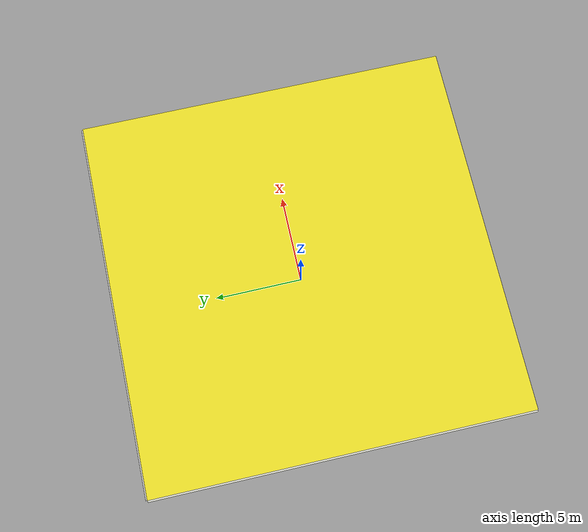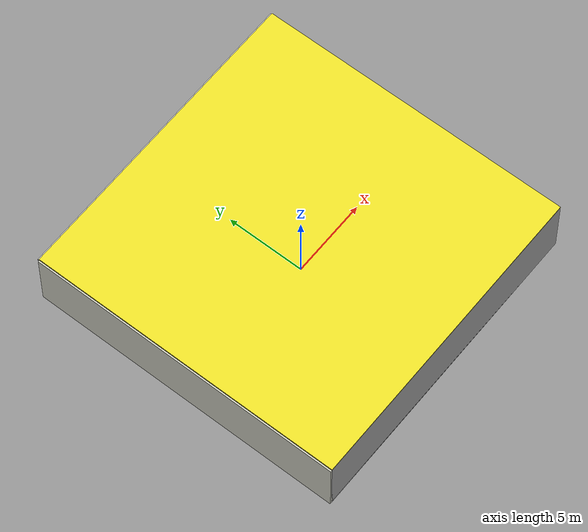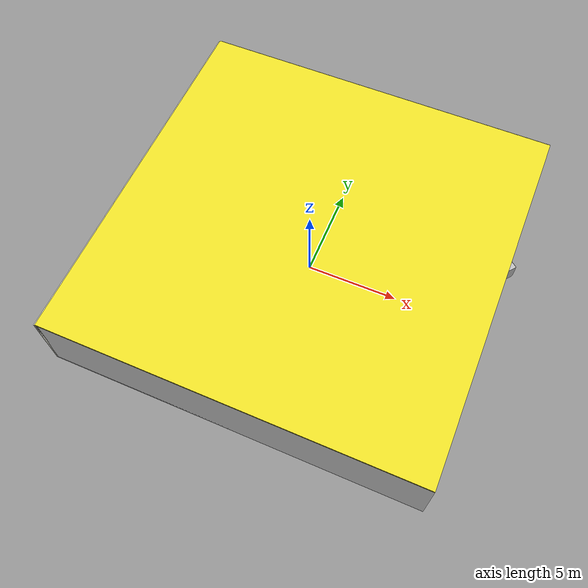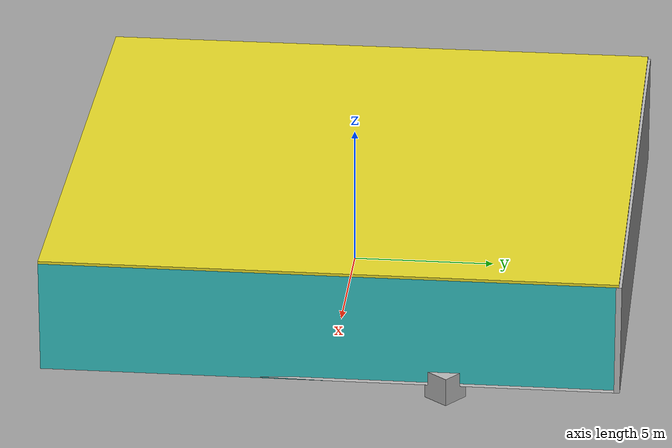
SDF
<sdf version="1.4">
 <world name="default">
  <physics type="ode">
   <max_step_size>0.001</max_step_size>
   <real_time_factor>1</real_time_factor>
   <real_time_update_rate>1000</real_time_update_rate>
   <gravity>0 0 -9.8</gravity>
  </physics>
  <scene><ambient>0.4 0.4 0.4 1</ambient><background>0.7 0.7 0.7 1</background><shadows>1</shadows></scene>
  <model name="Surrounding">
   <static>1</static>
   <link name="Ceiling">
    <collision name="Ceiling_Collision"><geometry><box><size>20 20 0.1</size></box></geometry></collision>
    <visual name="Ceiling_Visual">
     <geometry><box><size>20 20 0.1</size></box></geometry>
     <material>
      <script><uri>file://media/materials/scripts/gazebo.material</uri><name>Gazebo/YellowGlow</name></script>
     </material>
    </visual>
    <pose>0 0 4.05 0 0 0</pose>
   </link>
   <link name="Wall_South">
    <collision name="Wall_South_Collision">
     <geometry><box><size>20 0 4</size></box></geometry>
     <pose>0 0 2 0 -0 0</pose>
    </collision>
    <visual name="Wall_South_Visual">
     <pose>0 0 2 0 -0 0</pose>
     <geometry><box><size>20 0 4</size></box></geometry>
     <material>
      <script><uri>file://media/materials/scripts/gazebo.material</uri><name>Gazebo/LightOn</name></script>
     </material>
    </visual>
    <velocity_decay><linear>0</linear><angular>0</angular></velocity_decay>
    <pose>0 -10 0 0 -0 0</pose>
   </link>
   <link name="Wall_East">
    <collision name="Wall_21_Collision">
     <geometry><box><size>20 0 4</size></box></geometry>
     <pose>0 0 2 0 -0 0</pose>
    </collision>
    <visual name="Wall_21_Visual">
     <pose>0 0 2 0 -0 0</pose>
     <geometry><box><size>20 0 4</size></box></geometry>
     <material>
      <script><uri>file://media/materials/scripts/gazebo.material</uri><name>Gazebo/Turquoise</name></script>
     </material>
    </visual>
    <velocity_decay><linear>0</linear><angular>0</angular></velocity_decay>
    <pose>10 0 0 0 -0 1.5708</pose>
   </link>
   <link name="Wall_North">
    <collision name="Wall_22_Collision">
     <geometry><box><size>20 0.2 4</size></box></geometry>
     <pose>0 0 2 0 -0 0</pose>
    </collision>
    <visual name="Wall_22_Visual">
     <pose>0 0 2 0 -0 0</pose>
     <geometry><box><size>20 0.2 4</size></box></geometry>
     <material>
      <script><uri>file://media/materials/scripts/gazebo.material</uri><name>Gazebo/PioneerBody</name></script>
     </material>
    </visual>
    <velocity_decay><linear>0</linear><angular>0</angular></velocity_decay>
    <pose>0 10 0 0 -0 0</pose>
   </link>
   <link name="Wall_West">
    <collision name="Wall_23_Collision">
     <geometry><box><size>20 0.2 4</size></box></geometry>
     <pose>0 0 2 0 -0 0</pose>
    </collision>
    <visual name="Wall_23_Visual">
     <pose>0 0 2 0 -0 0</pose>
     <geometry><box><size>20 0.2 4</size></box></geometry>
     <material>
      <script><uri>file://media/materials/scripts/gazebo.material</uri><name>Gazebo/PaintedWall</name></script>
     </material>
    </visual>
    <velocity_decay><linear>0</linear><angular>0</angular></velocity_decay>
    <pose>-10 0 0 0 0 -1.5708</pose>
   </link>
   <link name="Ground_link">
    <collision name="collision">
     <pose>0 0 .05 0 -0 0</pose>
     <geometry><box><size>20 20 0.1</size></box></geometry>
    </collision>
    <visual name="visual">
     <pose>0 0 .05 0 -0 0</pose>
     <geometry><box><size>20 20 0.1</size></box></geometry>
     <material>
      <script><uri>file://media/materials/scripts/gazebo.material</uri><name>Gazebo/White</name></script>
     </material>
    </visual>
   </link>
   <static>1</static>
  </model>
  <spherical_coordinates>
   <surface_model>EARTH_WGS84</surface_model>
   <latitude_deg>0</latitude_deg>
   <longitude_deg>0</longitude_deg>
   <elevation>0</elevation>
   <heading_deg>0</heading_deg>
  </spherical_coordinates>
  <light name="lightball_0" type="diffuse">
   <diffuse>0.8 0.8 0.8 1</diffuse>
   <specular>0.2 0.2 0.2 1</specular>
   <attenuation>
    <range>100</range>
    <constant>0.7</constant>
    <linear>0.01</linear>
    <quadratic>0.001</quadratic>
   </attenuation>
   <direction>-0.5 0.1 -0.9</direction>
   <pose>9.94693011742 9.06367101576 2.53481296733 0 0 0</pose>
  </light>
  <light name="lightball_1" type="diffuse">
   <diffuse>0.8 0.8 0.8 1</diffuse>
   <specular>0.2 0.2 0.2 1</specular>
   <attenuation>
    <range>100</range>
    <constant>0.7</constant>
    <linear>0.01</linear>
    <quadratic>0.001</quadratic>
   </attenuation>
   <direction>-0.5 0.1 -0.9</direction>
   <pose>0.440759789783 -6.66210085407 2.10096971784 0 0 0</pose>
  </light>
  <light name="lightball_2" type="diffuse">
   <diffuse>0.8 0.8 0.8 1</diffuse>
   <specular>0.2 0.2 0.2 1</specular>
   <attenuation>
    <range>100</range>
    <constant>0.7</constant>
    <linear>0.01</linear>
    <quadratic>0.001</quadratic>
   </attenuation>
   <direction>-0.5 0.1 -0.9</direction>
   <pose>7.44697553442 9.71167037615 2.03562250449 0 0 0</pose>
  </light>
  <light name="lightball_3" type="diffuse">
   <diffuse>0.8 0.8 0.8 1</diffuse>
   <specular>0.2 0.2 0.2 1</specular>
   <attenuation>
    <range>100</range>
    <constant>0.7</constant>
    <linear>0.01</linear>
    <quadratic>0.001</quadratic>
   </attenuation>
   <direction>-0.5 0.1 -0.9</direction>
   <pose>-2.71736651397 5.96436294591 1.08506101946 0 0 0</pose>
  </light>
  <light name="lightball_4" type="diffuse">
   <diffuse>0.8 0.8 0.8 1</diffuse>
   <specular>0.2 0.2 0.2 1</specular>
   <attenuation>
    <range>100</range>
    <constant>0.7</constant>
    <linear>0.01</linear>
    <quadratic>0.001</quadratic>
   </attenuation>
   <direction>-0.5 0.1 -0.9</direction>
   <pose>-0.451411191481 2.38371781496 1.03215299898 0 0 0</pose>
  </light>
  <light name="lightball_5" type="diffuse">
   <diffuse>0.8 0.8 0.8 1</diffuse>
   <specular>0.2 0.2 0.2 1</specular>
   <attenuation>
    <range>100</range>
    <constant>0.7</constant>
    <linear>0.01</linear>
    <quadratic>0.001</quadratic>
   </attenuation>
   <direction>-0.5 0.1 -0.9</direction>
   <pose>-8.81341561565 -3.12265406584 2.54918823382 0 0 0</pose>
  </light>
  <light name="lightball_6" type="diffuse">
   <diffuse>0.8 0.8 0.8 1</diffuse>
   <specular>0.2 0.2 0.2 1</specular>
   <attenuation>
    <range>100</range>
    <constant>0.7</constant>
    <linear>0.01</linear>
    <quadratic>0.001</quadratic>
   </attenuation>
   <direction>-0.5 0.1 -0.9</direction>
   <pose>-7.86330670389 -4.91139773698 1.94146610804 0 0 0</pose>
  </light>
  <light name="lightball_7" type="diffuse">
   <diffuse>0.8 0.8 0.8 1</diffuse>
   <specular>0.2 0.2 0.2 1</specular>
   <attenuation>
    <range>100</range>
    <constant>0.7</constant>
    <linear>0.01</linear>
    <quadratic>0.001</quadratic>
   </attenuation>
   <direction>-0.5 0.1 -0.9</direction>
   <pose>-2.20673944587 4.99305914102 1.52327779514 0 0 0</pose>
  </light>
  <light name="lightball_8" type="diffuse">
   <diffuse>0.8 0.8 0.8 1</diffuse>
   <specular>0.2 0.2 0.2 1</specular>
   <attenuation>
    <range>100</range>
    <constant>0.7</constant>
    <linear>0.01</linear>
    <quadratic>0.001</quadratic>
   </attenuation>
   <direction>-0.5 0.1 -0.9</direction>
   <pose>2.92121833097 -7.26448669962 2.13770965542 0 0 0</pose>
  </light>
  <include><uri>model://table</uri><pose>-8.58271829376 -8.01221053677 0 0 0 1.65602584048</pose></include>
  <include>
   <uri>model://robocup_3Dsim_goal</uri>
   <pose>-8.24873950813 -1.28692435917 0 0 0 2.4620200765</pose>
  </include>
  <include>
   <uri>model://robocup_3Dsim_goal</uri>
   <pose>-2.15515176727 -8.41456707672 0 0 0 2.69395001905</pose>
  </include>
  <include><uri>model://table</uri><pose>1.85736605945 -1.66292402244 0 0 0 2.851691565</pose></include>
  <include>
   <uri>model://construction_cone</uri>
   <pose>8.07509646201 -6.33681130922 0 0 0 2.16956896964</pose>
  </include>
  <include>
   <uri>model://construction_cone</uri>
   <pose>8.64061487612 2.31655817745 0 0 0 0.801913005675</pose>
  </include>
  <include>
   <uri>model://textured_shapes</uri>
   <pose>8.66945235401 5.0125751829 0 0 0 0.893147637226</pose>
  </include>
 </world>
</sdf>

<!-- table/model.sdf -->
<sdf version="1.5">
  <model name="table">
    <static>true</static>
    <link name="link">
      <collision name="surface">
        <pose>0 0 1.0 0 0 0</pose>
        <geometry>
          <box>
            <size>1.5 0.8 0.03</size>
          </box>
        </geometry>
        <surface>
          <friction>
            <ode>
              <mu>0.6</mu>
              <mu2>0.6</mu2>
            </ode>
          </friction>
        </surface>
      </collision>
      <visual name="visual1">
        <pose>0 0 1.0 0 0 0</pose>
        <geometry>
          <box>
            <size>1.5 0.8 0.03</size>
          </box>
        </geometry>
        <material>
          <script>
            <uri>model://media/materials/scripts/gazebo.material</uri>
            <name>Gazebo/Wood</name>
          </script>
        </material>
      </visual>
      <collision name="front_left_leg">
        <pose>0.68 0.38 0.5 0 0 0</pose>
        <geometry>
          <cylinder>
            <radius>0.02</radius>
            <length>1.0</length>
          </cylinder>
        </geometry>
      </collision>
      <visual name="front_left_leg">
        <pose>0.68 0.38 0.5 0 0 0</pose>
        <geometry>
          <cylinder>
            <radius>0.02</radius>
            <length>1.0</length>
          </cylinder>
        </geometry>
        <material>
          <script>
            <uri>model://media/materials/scripts/gazebo.material</uri>
            <name>Gazebo/Grey</name>
          </script>
        </material>
      </visual>
      <collision name="front_right_leg">
        <pose>0.68 -0.38 0.5 0 0 0</pose>
        <geometry>
          <cylinder>
            <radius>0.02</radius>
            <length>1.0</length>
          </cylinder>
        </geometry>
      </collision>
      <visual name="front_right_leg">
        <pose>0.68 -0.38 0.5 0 0 0</pose>
        <geometry>
          <cylinder>
            <radius>0.02</radius>
            <length>1.0</length>
          </cylinder>
        </geometry>
        <material>
          <script>
            <uri>model://media/materials/scripts/gazebo.material</uri>
            <name>Gazebo/Grey</name>
          </script>
        </material>
      </visual>
      <collision name="back_right_leg">
        <pose>-0.68 -0.38 0.5 0 0 0</pose>
        <geometry>
          <cylinder>
            <radius>0.02</radius>
            <length>1.0</length>
          </cylinder>
        </geometry>
      </collision>
      <visual name="back_right_leg">
        <pose>-0.68 -0.38 0.5 0 0 0</pose>
        <geometry>
          <cylinder>
            <radius>0.02</radius>
            <length>1.0</length>
          </cylinder>
        </geometry>
        <material>
          <script>
            <uri>model://media/materials/scripts/gazebo.material</uri>
            <name>Gazebo/Grey</name>
          </script>
        </material>
      </visual>
      <collision name="back_left_leg">
        <pose>-0.68 0.38 0.5 0 0 0</pose>
        <geometry>
          <cylinder>
            <radius>0.02</radius>
            <length>1.0</length>
          </cylinder>
        </geometry>
      </collision>
      <visual name="back_left_leg">
        <pose>-0.68 0.38 0.5 0 0 0</pose>
        <geometry>
          <cylinder>
            <radius>0.02</radius>
            <length>1.0</length>
          </cylinder>
        </geometry>
        <material>
          <script>
            <uri>model://media/materials/scripts/gazebo.material</uri>
            <name>Gazebo/Grey</name>
          </script>
        </material>
      </visual>
    </link>
  </model>
</sdf>

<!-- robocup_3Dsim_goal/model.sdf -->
<sdf version="1.5">
  <model name="robocup_3d_goal">
    <static>true</static>
    <link name="left_post">
      <pose>0 1.05 0.45 0 0 0</pose>
      <collision name="collision">
        <geometry>
          <cylinder>
            <radius>0.05</radius>
            <length>0.9</length>
          </cylinder>
        </geometry>
      </collision>
      <visual name="visual">
        <geometry>
          <cylinder>
            <radius>0.05</radius>
            <length>0.9</length>
          </cylinder>
        </geometry>
        <material>
          <script>
            <uri>file://media/materials/scripts/gazebo.material</uri>
            <name>Gazebo/ZincYellow</name>
          </script>
        </material>
      </visual>
    </link>
    <link name="left_support_horiz_lower">
      <pose>0.30 1.05 0.01 0 0 0</pose>
      <collision name="collision">
        <geometry>
          <box>
            <size>0.50 0.02 0.02</size>
          </box>
        </geometry>
      </collision>
      <visual name="visual">
        <geometry>
          <box>
            <size>0.50 0.02 0.02</size>
          </box>
        </geometry>
        <material>
          <script>
            <uri>file://media/materials/scripts/gazebo.material</uri>
            <name>Gazebo/White</name>
          </script>
        </material>
      </visual>
    </link>
    <link name="left_support_horiz_upper">
      <pose>0.30 1.05 0.79 0 0 0</pose>
      <collision name="collision">
        <geometry>
          <box>
            <size>0.50 0.02 0.02</size>
          </box>
        </geometry>
      </collision>
      <visual name="visual">
        <geometry>
          <box>
            <size>0.50 0.02 0.02</size>
          </box>
        </geometry>
        <material>
          <script>
            <uri>file://media/materials/scripts/gazebo.material</uri>
            <name>Gazebo/White</name>
          </script>
        </material>
      </visual>
    </link>
    <link name="left_support_vertical">
      <pose>0.56 1.05 0.4 0 1.5708 0</pose>
      <collision name="collision">
        <geometry>
          <box>
            <size>0.80 0.02 0.02</size>
          </box>
        </geometry>
      </collision>
      <visual name="visual">
        <geometry>
          <box>
            <size>0.80 0.02 0.02</size>
          </box>
        </geometry>
        <material>
          <script>
            <uri>file://media/materials/scripts/gazebo.material</uri>
            <name>Gazebo/White</name>
          </script>
        </material>
      </visual>
    </link>
    <link name="right_support_horiz_lower">
      <pose>0.30 -1.05 0.01 0 0 0</pose>
      <collision name="collision">
        <geometry>
          <box>
            <size>0.50 0.02 0.02</size>
          </box>
        </geometry>
      </collision>
      <visual name="visual">
        <geometry>
          <box>
            <size>0.50 0.02 0.02</size>
          </box>
        </geometry>
        <material>
          <script>
            <uri>file://media/materials/scripts/gazebo.material</uri>
            <name>Gazebo/White</name>
          </script>
        </material>
      </visual>
    </link>
    <link name="right_support_horiz_upper">
      <pose>0.30 -1.05 0.79 0 0 0</pose>
      <collision name="collision">
        <geometry>
          <box>
            <size>0.50 0.02 0.02</size>
          </box>
        </geometry>
      </collision>
      <visual name="visual">
        <geometry>
          <box>
            <size>0.50 0.02 0.02</size>
          </box>
        </geometry>
        <material>
          <script>
            <uri>file://media/materials/scripts/gazebo.material</uri>
            <name>Gazebo/White</name>
          </script>
        </material>
      </visual>
    </link>
    <link name="right_support_vertical">
      <pose>0.56 -1.05 0.4 0 1.5708 0</pose>
      <collision name="collision">
        <geometry>
          <box>
            <size>0.80 0.02 0.02</size>
          </box>
        </geometry>
      </collision>
      <visual name="visual">
        <geometry>
          <box>
            <size>0.80 0.02 0.02</size>
          </box>
        </geometry>
        <material>
          <script>
            <uri>file://media/materials/scripts/gazebo.material</uri>
            <name>Gazebo/White</name>
          </script>
        </material>
      </visual>
    </link>
    <link name="center_support_horiz_lower">
      <pose>0.56 0 0.01 0 1.5708 0</pose>
      <collision name="collision">
        <geometry>
          <box>
            <size>0.02 2.08 0.02</size>
          </box>
        </geometry>
      </collision>
      <visual name="visual">
        <geometry>
          <box>
            <size>0.02 2.08 0.02</size>
          </box>
        </geometry>
        <material>
          <script>
            <uri>file://media/materials/scripts/gazebo.material</uri>
            <name>Gazebo/White</name>
          </script>
        </material>
      </visual>
    </link>
    <link name="center_support_horiz_upper">
      <pose>0.56 0 0.79 0 1.5708 0</pose>
      <collision name="collision">
        <geometry>
          <box>
            <size>0.02 2.08 0.02</size>
          </box>
        </geometry>
      </collision>
      <visual name="visual">
        <geometry>
          <box>
            <size>0.02 2.08 0.02</size>
          </box>
        </geometry>
        <material>
          <script>
            <uri>file://media/materials/scripts/gazebo.material</uri>
            <name>Gazebo/White</name>
          </script>
        </material>
      </visual>
    </link>
    <link name="right_post">
      <pose>0 -1.05 0.45 0 0 0</pose>
      <collision name="collision">
        <geometry>
          <cylinder>
            <radius>0.05</radius>
            <length>0.9</length>
          </cylinder>
        </geometry>
      </collision>
      <visual name="visual">
        <geometry>
          <cylinder>
            <radius>0.05</radius>
            <length>0.9</length>
          </cylinder>
        </geometry>
        <material>
          <script>
            <uri>file://media/materials/scripts/gazebo.material</uri>
            <name>Gazebo/ZincYellow</name>
          </script>
        </material>
      </visual>
    </link>
    <link name="crossbar">
      <pose>0 0 0.85 1.57 1.57 0</pose>
      <collision name="collision">
        <geometry>
          <cylinder>
            <radius>0.05</radius>
            <length>2.0</length>
          </cylinder>
        </geometry>
      </collision>
      <visual name="visual">
        <geometry>
          <cylinder>
            <radius>0.05</radius>
            <length>2.0</length>
          </cylinder>
        </geometry>
        <material>
          <script>
            <uri>file://media/materials/scripts/gazebo.material</uri>
            <name>Gazebo/ZincYellow</name>
          </script>
        </material>
      </visual>
    </link>
    <link name="center_net">
      <pose>0.56 0 0.40 0 0 0</pose>
      <collision name="collision">
        <geometry>
          <box>
            <size>0.01 2.1 0.80</size>
          </box>
        </geometry>
      </collision>
      <visual name="visual">
        <geometry>
          <box>
            <size>0.01 2.1 0.80</size>
          </box>
        </geometry>
        <material>
          <script>
            <uri>model://../model_source/models/robocup09_spl_field/materials/scripts/</uri>
            <uri>model://../model_source/models/robocup09_spl_field/materials/textures/</uri>
            <name>RoboCup/Net</name>
          </script>
        </material>
      </visual>
    </link>
    <link name="left_net">
      <pose>0.30 1.05 0.40 0 0 0</pose>
      <collision name="collision">
        <geometry>
          <box>
            <size>0.50 0.01 0.76</size>
          </box>
        </geometry>
      </collision>
      <visual name="visual">
        <geometry>
          <box>
            <size>0.50 0.01 0.76</size>
          </box>
        </geometry>
        <material>
          <script>
            <uri>model://../model_source/models/robocup09_spl_field/materials/scripts/</uri>
            <uri>model://../model_source/models/robocup09_spl_field/materials/textures/</uri>
            <name>RoboCup/Net</name>
          </script>
        </material>
      </visual>
    </link>
    <link name="right_net">
      <pose>0.30 -1.05 0.40 0 0 0</pose>
      <collision name="collision">
        <geometry>
          <box>
            <size>0.50 0.01 0.76</size>
          </box>
        </geometry>
      </collision>
      <visual name="visual">
        <geometry>
          <box>
            <size>0.50 0.01 0.76</size>
          </box>
        </geometry>
        <material>
          <script>
            <uri>model://../model_source/models/robocup09_spl_field/materials/scripts/</uri>
            <uri>model://../model_source/models/robocup09_spl_field/materials/textures/</uri>
            <name>RoboCup/Net</name>
          </script>
        </material>
      </visual>
    </link>
  </model>
</sdf>

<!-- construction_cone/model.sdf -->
<sdf version="1.5">
  <model name="Construction Cone">
    <link name="link">
      <collision name="collision">
        <geometry>
          <mesh>
            <scale>10 10 10</scale>
            <uri>file://isr-testbed/construction_cone/meshes/construction_cone.dae</uri>
          </mesh>
        </geometry>
      </collision>
      <visual name="visual">
        <geometry>
          <mesh>
            <scale>10 10 10</scale>
            <uri>file://isr-testbed/construction_cone/meshes/construction_cone.dae</uri>
          </mesh>
        </geometry>
      </visual>
    </link>
  </model>
</sdf>

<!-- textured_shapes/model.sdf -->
<sdf version="1.6">
  <model name="textured_shapes">
    <pose>0 0 0.5 0 0 0</pose>
    <link name="box">
      <pose>0 -1.5 0 0 0 0</pose>
      <collision name="collision">
        <geometry>
          <box>
            <size>1 1 1</size>
          </box>
        </geometry>
      </collision>
      <visual name="visual">
        <geometry>
          <box>
            <size>1 1 1</size>
          </box>
        </geometry>
        <material>
          <script>
            <uri>model://../model_source/models/textured_shapes/materials/scripts</uri>
            <uri>model://../model_source/models/textured_shapes/materials/textures</uri>
            <name>TexturedShape/Squares</name>
          </script>
        </material>
      </visual>
    </link>
    <link name="sphere">
      <collision name="collision">
        <geometry>
          <sphere>
            <radius>0.5</radius>
          </sphere>
        </geometry>
      </collision>
      <visual name="visual">
        <geometry>
          <sphere>
            <radius>0.5</radius>
          </sphere>
        </geometry>
        <material>
          <script>
            <uri>model://../model_source/models/textured_shapes/materials/scripts</uri>
            <uri>model://../model_source/models/textured_shapes/materials/textures</uri>
            <name>TexturedShape/Squares</name>
          </script>
        </material>
      </visual>
    </link>
    <link name="cylinder">
      <pose>0 1.5 0 0 0 0</pose>
      <collision name="collision">
        <geometry>
          <cylinder>
            <radius>0.5</radius>
            <length>1</length>
          </cylinder>
        </geometry>
      </collision>
      <visual name="visual">
        <geometry>
          <cylinder>
            <radius>0.5</radius>
            <length>1</length>
          </cylinder>
        </geometry>
        <material>
          <script>
            <uri>model://../model_source/models/textured_shapes/materials/scripts</uri>
            <uri>model://../model_source/models/textured_shapes/materials/textures</uri>
            <name>TexturedShape/Squares</name>
          </script>
        </material>
      </visual>
    </link>
  </model>
</sdf>
